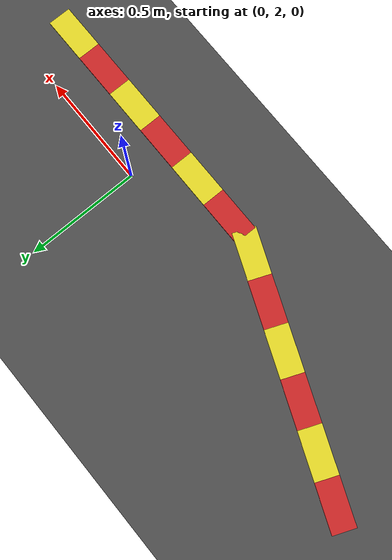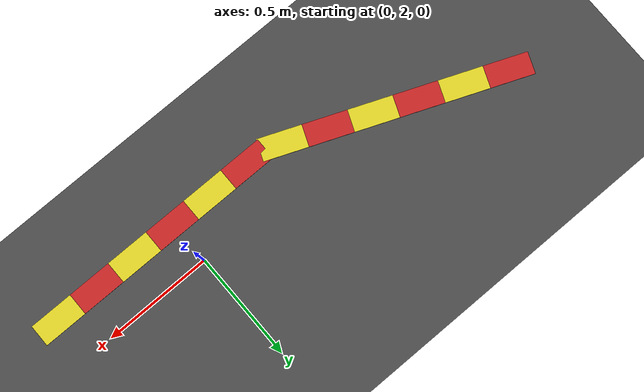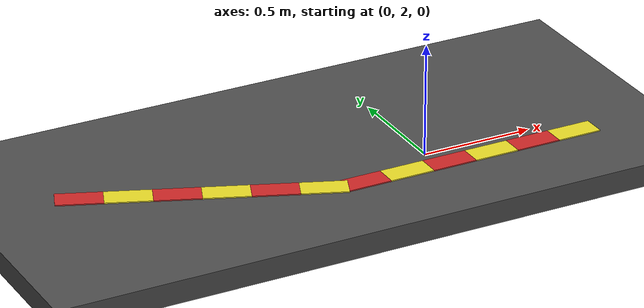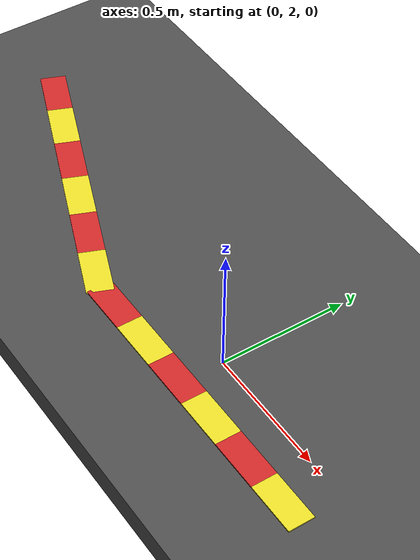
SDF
<sdf version="1.6">
 <world name="default">
  <model name="ground_plane">
   <static>1</static>
   <link name="link">
    <collision name="collision">
     <geometry><plane><normal>0 0 1</normal><size>40 40</size></plane></geometry>
     <surface><friction><ode><mu>100</mu><mu2>50</mu2></ode></friction></surface>
    </collision>
    <visual name="visual">
     <cast_shadows>0</cast_shadows>
     <geometry><plane><normal>0 0 1</normal><size>40 40</size></plane></geometry>
     <material>
      <script><uri>file://media/materials/scripts/gazebo.material</uri><name>Gazebo/Grey</name></script>
     </material>
    </visual>
    <velocity_decay><linear>0</linear><angular>0</angular></velocity_decay>
   </link>
  </model>
  <model name="asphalt_plane">
   <static>1</static>
   <link name="link">
    <collision name="collision"><geometry><box><size>40 40 0.1</size></box></geometry></collision>
    <visual name="visual">
     <cast_shadows>0</cast_shadows>
     <geometry><box><size>40 40 0.1</size></box></geometry>
     <material>
      <script>
       <uri>model://asphalt_plane/materials/scripts</uri>
       <uri>model://asphalt_plane/materials/textures</uri>
       <name>vrc/asphalt</name>
      </script>
     </material>
    </visual>
    <velocity_decay><linear>0</linear><angular>0</angular></velocity_decay>
   </link>
   <pose>0.433796 -0.497378 0 0 -0 0</pose>
  </model>
  <model name="DashLine_clone_clone_clone_11">
   <link name="link">
    <inertial>
     <mass>1</mass>
     <inertia>
      <ixx>0.166667</ixx>
      <ixy>0</ixy>
      <ixz>0</ixz>
      <iyy>0.166667</iyy>
      <iyz>0</iyz>
      <izz>0.166667</izz>
     </inertia>
    </inertial>
    <gravity>0</gravity>
    <visual name="ModelPreview_3::link::visual_3">
     <geometry><box><size>0.2 0.1 0.01</size></box></geometry>
     <material>
      <script><name>Gazebo/Yellow</name><uri>file://media/materials/scripts/gazebo.material</uri></script>
      <shader type="vertex"><normal_map>__default__</normal_map></shader>
      <ambient>0.988 0.914 0.31 1</ambient>
      <diffuse>0.7 0.7 0.7 1</diffuse>
      <specular>0.01 0.01 0.01 1</specular>
      <emissive>0 0 0 1</emissive>
     </material>
     <pose>0.2 0 0 0 -0 0</pose>
    </visual>
    <visual name="ModelPreview_6::link::visual_5">
     <geometry><box><size>0.2 0.1 0.01</size></box></geometry>
     <material>
      <script><name>Gazebo/Yellow</name><uri>file://media/materials/scripts/gazebo.material</uri></script>
      <shader type="vertex"><normal_map>__default__</normal_map></shader>
      <ambient>0.988 0.914 0.31 1</ambient>
      <diffuse>0.7 0.7 0.7 1</diffuse>
      <specular>0.01 0.01 0.01 1</specular>
      <emissive>0 0 0 1</emissive>
     </material>
     <pose>0.6 0 0 0 -0 0</pose>
    </visual>
    <visual name="ModelPreview_3::link::visual_4">
     <geometry><box><size>0.2 0.1 0.01</size></box></geometry>
     <material>
      <script><name>Gazebo/Red</name><uri>file://media/materials/scripts/gazebo.material</uri></script>
      <shader type="vertex"><normal_map>__default__</normal_map></shader>
      <ambient>0.937 0.161 0.161 1</ambient>
      <diffuse>0.7 0.7 0.7 1</diffuse>
      <specular>0.01 0.01 0.01 1</specular>
      <emissive>0 0 0 1</emissive>
     </material>
     <pose>0.4 0 0 0 -0 0</pose>
    </visual>
    <visual name="ModelPreview_3::link::visual_2">
     <geometry><box><size>0.2 0.1 0.01</size></box></geometry>
     <material>
      <script><name>Gazebo/Red</name><uri>file://media/materials/scripts/gazebo.material</uri></script>
      <shader type="vertex"><normal_map>__default__</normal_map></shader>
      <ambient>0.937 0.161 0.161 1</ambient>
      <diffuse>0.7 0.7 0.7 1</diffuse>
      <specular>0.01 0.01 0.01 1</specular>
      <emissive>0 0 0 1</emissive>
     </material>
    </visual>
    <visual name="visual">
     <geometry><box><size>0.2 0.1 0.01</size></box></geometry>
     <material>
      <script><name>Gazebo/Red</name><uri>file://media/materials/scripts/gazebo.material</uri></script>
      <shader type="vertex"><normal_map>__default__</normal_map></shader>
      <ambient>0.8 0 0 1</ambient>
      <diffuse>0.7 0.7 0.7 1</diffuse>
      <specular>0.01 0.01 0.01 1</specular>
      <emissive>0 0 0 1</emissive>
     </material>
     <pose>-0.4 0 0 0 -0 0</pose>
    </visual>
    <visual name="ModelPreview_3::link::visual_1">
     <geometry><box><size>0.2 0.1 0.01</size></box></geometry>
     <material>
      <script><name>Gazebo/Yellow</name><uri>file://media/materials/scripts/gazebo.material</uri></script>
      <shader type="vertex"><normal_map>__default__</normal_map></shader>
      <ambient>0.988 0.914 0.31 1</ambient>
      <diffuse>0.7 0.7 0.7 1</diffuse>
      <specular>0.01 0.01 0.01 1</specular>
      <emissive>0 0 0 1</emissive>
     </material>
     <pose>-0.2 0 0 0 -0 0</pose>
    </visual>
   </link>
   <static>0</static>
   <pose>0.009858 1.81006 0.05 0 -0 0</pose>
  </model>
  <model name="DashLine_clone_clone_clone_12_clone">
   <link name="link">
    <inertial>
     <mass>1</mass>
     <inertia>
      <ixx>0.166667</ixx>
      <ixy>0</ixy>
      <ixz>0</ixz>
      <iyy>0.166667</iyy>
      <iyz>0</iyz>
      <izz>0.166667</izz>
     </inertia>
    </inertial>
    <gravity>0</gravity>
    <visual name="ModelPreview_3::link::visual_3">
     <geometry><box><size>0.2 0.1 0.01</size></box></geometry>
     <material>
      <script><name>Gazebo/Yellow</name><uri>file://media/materials/scripts/gazebo.material</uri></script>
      <shader type="vertex"><normal_map>__default__</normal_map></shader>
      <ambient>0.988 0.914 0.31 1</ambient>
      <diffuse>0.7 0.7 0.7 1</diffuse>
      <specular>0.01 0.01 0.01 1</specular>
      <emissive>0 0 0 1</emissive>
     </material>
     <pose>0.2 0 0 0 -0 0</pose>
    </visual>
    <visual name="ModelPreview_6::link::visual_5">
     <geometry><box><size>0.2 0.1 0.01</size></box></geometry>
     <material>
      <script><name>Gazebo/Yellow</name><uri>file://media/materials/scripts/gazebo.material</uri></script>
      <shader type="vertex"><normal_map>__default__</normal_map></shader>
      <ambient>0.988 0.914 0.31 1</ambient>
      <diffuse>0.7 0.7 0.7 1</diffuse>
      <specular>0.01 0.01 0.01 1</specular>
      <emissive>0 0 0 1</emissive>
     </material>
     <pose>0.6 0 0 0 -0 0</pose>
    </visual>
    <visual name="ModelPreview_3::link::visual_4">
     <geometry><box><size>0.2 0.1 0.01</size></box></geometry>
     <material>
      <script><name>Gazebo/Red</name><uri>file://media/materials/scripts/gazebo.material</uri></script>
      <shader type="vertex"><normal_map>__default__</normal_map></shader>
      <ambient>0.937 0.161 0.161 1</ambient>
      <diffuse>0.7 0.7 0.7 1</diffuse>
      <specular>0.01 0.01 0.01 1</specular>
      <emissive>0 0 0 1</emissive>
     </material>
     <pose>0.4 0 0 0 -0 0</pose>
    </visual>
    <visual name="ModelPreview_3::link::visual_2">
     <geometry><box><size>0.2 0.1 0.01</size></box></geometry>
     <material>
      <script><name>Gazebo/Red</name><uri>file://media/materials/scripts/gazebo.material</uri></script>
      <shader type="vertex"><normal_map>__default__</normal_map></shader>
      <ambient>0.937 0.161 0.161 1</ambient>
      <diffuse>0.7 0.7 0.7 1</diffuse>
      <specular>0.01 0.01 0.01 1</specular>
      <emissive>0 0 0 1</emissive>
     </material>
    </visual>
    <visual name="visual">
     <geometry><box><size>0.2 0.1 0.01</size></box></geometry>
     <material>
      <script><name>Gazebo/Red</name><uri>file://media/materials/scripts/gazebo.material</uri></script>
      <shader type="vertex"><normal_map>__default__</normal_map></shader>
      <ambient>0.8 0 0 1</ambient>
      <diffuse>0.7 0.7 0.7 1</diffuse>
      <specular>0.01 0.01 0.01 1</specular>
      <emissive>0 0 0 1</emissive>
     </material>
     <pose>-0.4 0 0 0 -0 0</pose>
    </visual>
    <visual name="ModelPreview_3::link::visual_1">
     <geometry><box><size>0.2 0.1 0.01</size></box></geometry>
     <material>
      <script><name>Gazebo/Yellow</name><uri>file://media/materials/scripts/gazebo.material</uri></script>
      <shader type="vertex"><normal_map>__default__</normal_map></shader>
      <ambient>0.988 0.914 0.31 1</ambient>
      <diffuse>0.7 0.7 0.7 1</diffuse>
      <specular>0.01 0.01 0.01 1</specular>
      <emissive>0 0 0 1</emissive>
     </material>
     <pose>-0.2 0 0 0 -0 0</pose>
    </visual>
   </link>
   <static>0</static>
   <pose>-1.11688 2.06221 0.05 0 0 -0.383062</pose>
  </model>
 </world>
</sdf>
